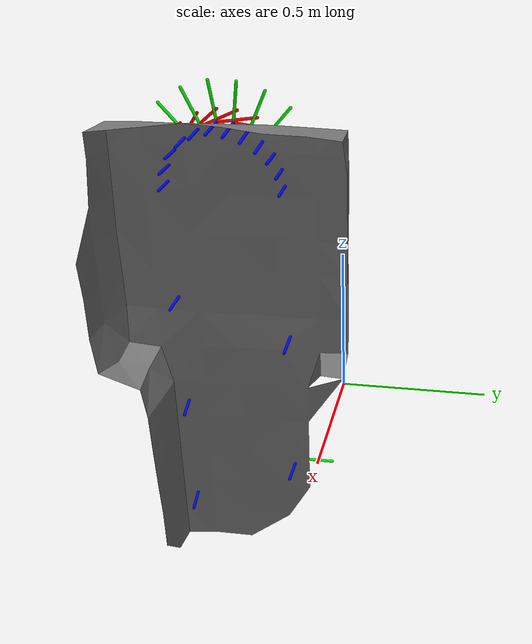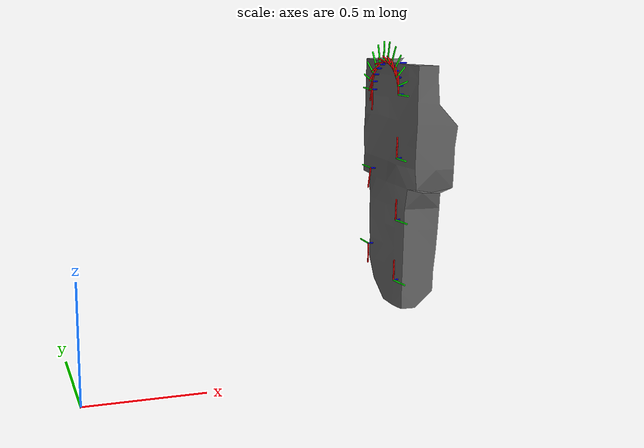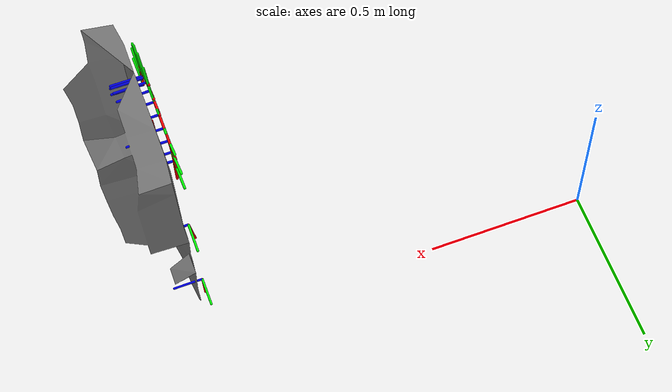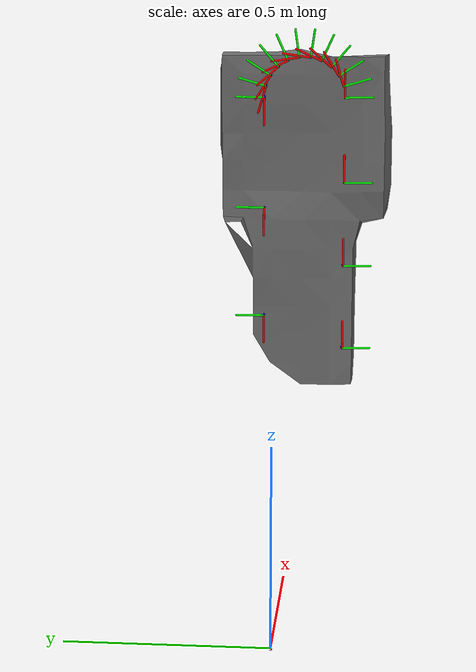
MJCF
<mujoco model="reconstructed">
  <compiler angle="radian"/>
  <option timestep="0.01"/>

  <visual>
    <headlight diffuse="0.6 0.6 0.6" ambient="0.1 0.1 0.1" specular="0 0 0"/>
    <rgba haze="0.15 0.25 0.35 1"/>
    <global azimuth="120" elevation="-20"/>
  </visual>

  <asset>
    <mesh name="reconstructed_mesh" file="reconstructed.obj"/>
    <mesh name="reconstructed_collision_mesh" file="reconstructed.obj"/>
  </asset>

  <default>
    <geom condim="3" friction="1 0.5 0.01" solref="0.02 1" solimp="0.9 0.95 0.001"/>
  </default>

  <worldbody>
    <body name="reconstructed" pos="0 0 0">

      <geom type="mesh" mesh="reconstructed_mesh" rgba="0.45 0.45 0.45 1" contype="0" conaffinity="0" group="0"/>

      <!-- Collisions-->
      <geom name="reconstructed_collision" type="mesh" mesh="reconstructed_collision_mesh" pos="0 0 0" rgba="0.7 0.1 0.1 0.3" contype="1" conaffinity="1" group="3"/>

      <!-- center of the piece -->
      <site name="mount_reconstructed_site" pos="0.0 0.0 0.0" size="0.005" rgba="1 0 0 1"/>

      <!-- Point 0 (waypoint_id: 0:0) -->
      <body name="point_0_traj" pos="1.2398389702191433 -0.12177624973664676 0.4399665670052016" quat="-0.04613876755134496 0.705589065223876 0.04630411468214134 0.7055998966332429">
        <geom type="capsule" fromto="0 0 0 0.08 0 0" rgba="1 0 0 1" size="0.003" contype="0" conaffinity="0"/>
        <geom type="capsule" fromto="0 0 0 0 0.08 0" rgba="0 1 0 1" size="0.003" contype="0" conaffinity="0"/>
        <geom type="capsule" fromto="0 0 0 0 0 0.08" rgba="0 0 1 1" size="0.003" contype="0" conaffinity="0"/>
      </body>

      <!-- Point 1 (waypoint_id: 0:1) -->
      <body name="point_1_traj" pos="1.239763160310089 -0.1217283074173864 0.6850079842804658" quat="-0.04668196970576362 0.7055047100423981 0.04757209379449118 0.7055641669645576">
        <geom type="capsule" fromto="0 0 0 0.08 0 0" rgba="1 0 0 1" size="0.003" contype="0" conaffinity="0"/>
        <geom type="capsule" fromto="0 0 0 0 0.08 0" rgba="0 1 0 1" size="0.003" contype="0" conaffinity="0"/>
        <geom type="capsule" fromto="0 0 0 0 0 0.08" rgba="0 0 1 1" size="0.003" contype="0" conaffinity="0"/>
      </body>

      <!-- Point 2 (waypoint_id: 0:2) -->
      <body name="point_2_traj" pos="1.2347960037013313 -0.12182916717120795 0.9300164291260314" quat="-0.00397026772020063 0.7110567723435863 0.003974395827144443 0.7031121586605941">
        <geom type="capsule" fromto="0 0 0 0.08 0 0" rgba="1 0 0 1" size="0.003" contype="0" conaffinity="0"/>
        <geom type="capsule" fromto="0 0 0 0 0.08 0" rgba="0 1 0 1" size="0.003" contype="0" conaffinity="0"/>
        <geom type="capsule" fromto="0 0 0 0 0 0.08" rgba="0 0 1 1" size="0.003" contype="0" conaffinity="0"/>
      </body>

      <!-- Point 3 (waypoint_id: 0:3) -->
      <body name="point_3_traj" pos="1.2330619008935922 -0.12183167259901001 1.1750466678957883" quat="-0.003220286608168738 0.6946829212760613 0.014887489021399898 0.7191548034409257">
        <geom type="capsule" fromto="0 0 0 0.08 0 0" rgba="1 0 0 1" size="0.003" contype="0" conaffinity="0"/>
        <geom type="capsule" fromto="0 0 0 0 0.08 0" rgba="0 1 0 1" size="0.003" contype="0" conaffinity="0"/>
        <geom type="capsule" fromto="0 0 0 0 0 0.08" rgba="0 0 1 1" size="0.003" contype="0" conaffinity="0"/>
      </body>

      <!-- Point 4 (waypoint_id: 0:4) -->
      <body name="point_4_traj" pos="1.2318535447323198 -0.11720248948405182 1.2074304228377515" quat="0.09380679926039524 0.6873930557166241 0.10708715450980319 0.7121961897567801">
        <geom type="capsule" fromto="0 0 0 0.08 0 0" rgba="1 0 0 1" size="0.003" contype="0" conaffinity="0"/>
        <geom type="capsule" fromto="0 0 0 0 0.08 0" rgba="0 1 0 1" size="0.003" contype="0" conaffinity="0"/>
        <geom type="capsule" fromto="0 0 0 0 0 0.08" rgba="0 0 1 1" size="0.003" contype="0" conaffinity="0"/>
      </body>

      <!-- Point 5 (waypoint_id: 0:5) -->
      <body name="point_5_traj" pos="1.230579077716589 -0.10363472293113687 1.2371895329969869" quat="0.19427477954965808 0.6651366299420344 0.2038875553284155 0.6915782228515349">
        <geom type="capsule" fromto="0 0 0 0.08 0 0" rgba="1 0 0 1" size="0.003" contype="0" conaffinity="0"/>
        <geom type="capsule" fromto="0 0 0 0 0.08 0" rgba="0 1 0 1" size="0.003" contype="0" conaffinity="0"/>
        <geom type="capsule" fromto="0 0 0 0 0 0.08" rgba="0 0 1 1" size="0.003" contype="0" conaffinity="0"/>
      </body>

      <!-- Point 6 (waypoint_id: 0:6) -->
      <body name="point_6_traj" pos="1.2299417164446514 -0.082209300807677 1.2619171366122646" quat="0.28436833850668014 0.6384818649975174 0.30316137677580185 0.6477412567959854">
        <geom type="capsule" fromto="0 0 0 0.08 0 0" rgba="1 0 0 1" size="0.003" contype="0" conaffinity="0"/>
        <geom type="capsule" fromto="0 0 0 0 0.08 0" rgba="0 1 0 1" size="0.003" contype="0" conaffinity="0"/>
        <geom type="capsule" fromto="0 0 0 0 0 0.08" rgba="0 0 1 1" size="0.003" contype="0" conaffinity="0"/>
      </body>

      <!-- Point 7 (waypoint_id: 0:7) -->
      <body name="point_7_traj" pos="1.2292818173015212 -0.05468362155685173 1.2796051555888968" quat="0.373712001040846 0.5967888674398254 0.39103470461403883 0.5926839358084109">
        <geom type="capsule" fromto="0 0 0 0.08 0 0" rgba="1 0 0 1" size="0.003" contype="0" conaffinity="0"/>
        <geom type="capsule" fromto="0 0 0 0 0.08 0" rgba="0 1 0 1" size="0.003" contype="0" conaffinity="0"/>
        <geom type="capsule" fromto="0 0 0 0 0 0.08" rgba="0 0 1 1" size="0.003" contype="0" conaffinity="0"/>
      </body>

      <!-- Point 8 (waypoint_id: 0:8) -->
      <body name="point_8_traj" pos="1.2289003220006754 -0.02328012328022956 1.2888222800838822" quat="0.45421848328420716 0.5350974524226776 0.47194894736979587 0.5334983382638567">
        <geom type="capsule" fromto="0 0 0 0.08 0 0" rgba="1 0 0 1" size="0.003" contype="0" conaffinity="0"/>
        <geom type="capsule" fromto="0 0 0 0 0.08 0" rgba="0 1 0 1" size="0.003" contype="0" conaffinity="0"/>
        <geom type="capsule" fromto="0 0 0 0 0 0.08" rgba="0 0 1 1" size="0.003" contype="0" conaffinity="0"/>
      </body>

      <!-- Point 9 (waypoint_id: 0:9) -->
      <body name="point_9_traj" pos="1.2283614813989392 0.009442872994473488 1.2888186477746328" quat="0.516745022652 0.47584169364247475 0.5519565870490325 0.4493252609958948">
        <geom type="capsule" fromto="0 0 0 0.08 0 0" rgba="1 0 0 1" size="0.003" contype="0" conaffinity="0"/>
        <geom type="capsule" fromto="0 0 0 0 0.08 0" rgba="0 1 0 1" size="0.003" contype="0" conaffinity="0"/>
        <geom type="capsule" fromto="0 0 0 0 0 0.08" rgba="0 0 1 1" size="0.003" contype="0" conaffinity="0"/>
      </body>

      <!-- Point 10 (waypoint_id: 0:10) -->
      <body name="point_10_traj" pos="1.2276536443505697 0.04083266226540186 1.2795941801211046" quat="0.5754893548082831 0.39235007769840685 0.6141195387914385 0.3711207500356063">
        <geom type="capsule" fromto="0 0 0 0.08 0 0" rgba="1 0 0 1" size="0.003" contype="0" conaffinity="0"/>
        <geom type="capsule" fromto="0 0 0 0 0.08 0" rgba="0 1 0 1" size="0.003" contype="0" conaffinity="0"/>
        <geom type="capsule" fromto="0 0 0 0 0 0.08" rgba="0 0 1 1" size="0.003" contype="0" conaffinity="0"/>
      </body>

      <!-- Point 11 (waypoint_id: 0:11) -->
      <body name="point_11_traj" pos="1.2264343888942682 0.06833406898763948 1.2618934938164896" quat="0.6225156505689229 0.30080013231600067 0.663777577049746 0.28529436272277736">
        <geom type="capsule" fromto="0 0 0 0.08 0 0" rgba="1 0 0 1" size="0.003" contype="0" conaffinity="0"/>
        <geom type="capsule" fromto="0 0 0 0 0.08 0" rgba="0 1 0 1" size="0.003" contype="0" conaffinity="0"/>
        <geom type="capsule" fromto="0 0 0 0 0 0.08" rgba="0 0 1 1" size="0.003" contype="0" conaffinity="0"/>
      </body>

      <!-- Point 12 (waypoint_id: 0:12) -->
      <body name="point_12_traj" pos="1.2250131780289422 0.08972550213381132 1.2371520134246834" quat="0.6800630610469541 0.19864591129370165 0.6769247389486986 0.1995668627928437">
        <geom type="capsule" fromto="0 0 0 0.08 0 0" rgba="1 0 0 1" size="0.003" contype="0" conaffinity="0"/>
        <geom type="capsule" fromto="0 0 0 0 0.08 0" rgba="0 1 0 1" size="0.003" contype="0" conaffinity="0"/>
        <geom type="capsule" fromto="0 0 0 0 0 0.08" rgba="0 0 1 1" size="0.003" contype="0" conaffinity="0"/>
      </body>

      <!-- Point 13 (waypoint_id: 0:13) -->
      <body name="point_13_traj" pos="1.2255176154238203 0.10333517722037279 1.2073877125175625" quat="0.709302432404664 0.08954491557152504 0.6901910012278887 0.11183983773307374">
        <geom type="capsule" fromto="0 0 0 0.08 0 0" rgba="1 0 0 1" size="0.003" contype="0" conaffinity="0"/>
        <geom type="capsule" fromto="0 0 0 0 0.08 0" rgba="0 1 0 1" size="0.003" contype="0" conaffinity="0"/>
        <geom type="capsule" fromto="0 0 0 0 0 0.08" rgba="0 0 1 1" size="0.003" contype="0" conaffinity="0"/>
      </body>

      <!-- Point 14 (waypoint_id: 0:14) -->
      <body name="point_14_traj" pos="1.2264019916872493 0.1080147397435726 1.1750017736362752" quat="0.7179187142204702 -0.004974954926763788 0.6959577285325192 0.014519286875054207">
        <geom type="capsule" fromto="0 0 0 0.08 0 0" rgba="1 0 0 1" size="0.003" contype="0" conaffinity="0"/>
        <geom type="capsule" fromto="0 0 0 0 0.08 0" rgba="0 1 0 1" size="0.003" contype="0" conaffinity="0"/>
        <geom type="capsule" fromto="0 0 0 0 0 0.08" rgba="0 0 1 1" size="0.003" contype="0" conaffinity="0"/>
      </body>

      <!-- Point 15 (waypoint_id: 0:15) -->
      <body name="point_15_traj" pos="1.2300635306306838 0.10806062144646351 0.8555715332046986" quat="0.6669217029486044 -1.5128274543391464e-05 0.7451278022755053 -1.3540461905113805e-05">
        <geom type="capsule" fromto="0 0 0 0.08 0 0" rgba="1 0 0 1" size="0.003" contype="0" conaffinity="0"/>
        <geom type="capsule" fromto="0 0 0 0 0.08 0" rgba="0 1 0 1" size="0.003" contype="0" conaffinity="0"/>
        <geom type="capsule" fromto="0 0 0 0 0 0.08" rgba="0 0 1 1" size="0.003" contype="0" conaffinity="0"/>
      </body>

      <!-- Point 16 (waypoint_id: 0:16) -->
      <body name="point_16_traj" pos="1.2298616250240235 0.10798897139509835 0.5361152494027287" quat="0.7081172490108711 -0.0015522251524811006 0.7060917737959523 0.0013997242719904835">
        <geom type="capsule" fromto="0 0 0 0.08 0 0" rgba="1 0 0 1" size="0.003" contype="0" conaffinity="0"/>
        <geom type="capsule" fromto="0 0 0 0 0.08 0" rgba="0 1 0 1" size="0.003" contype="0" conaffinity="0"/>
        <geom type="capsule" fromto="0 0 0 0 0 0.08" rgba="0 0 1 1" size="0.003" contype="0" conaffinity="0"/>
      </body>

    </body>
  </worldbody>
</mujoco>
